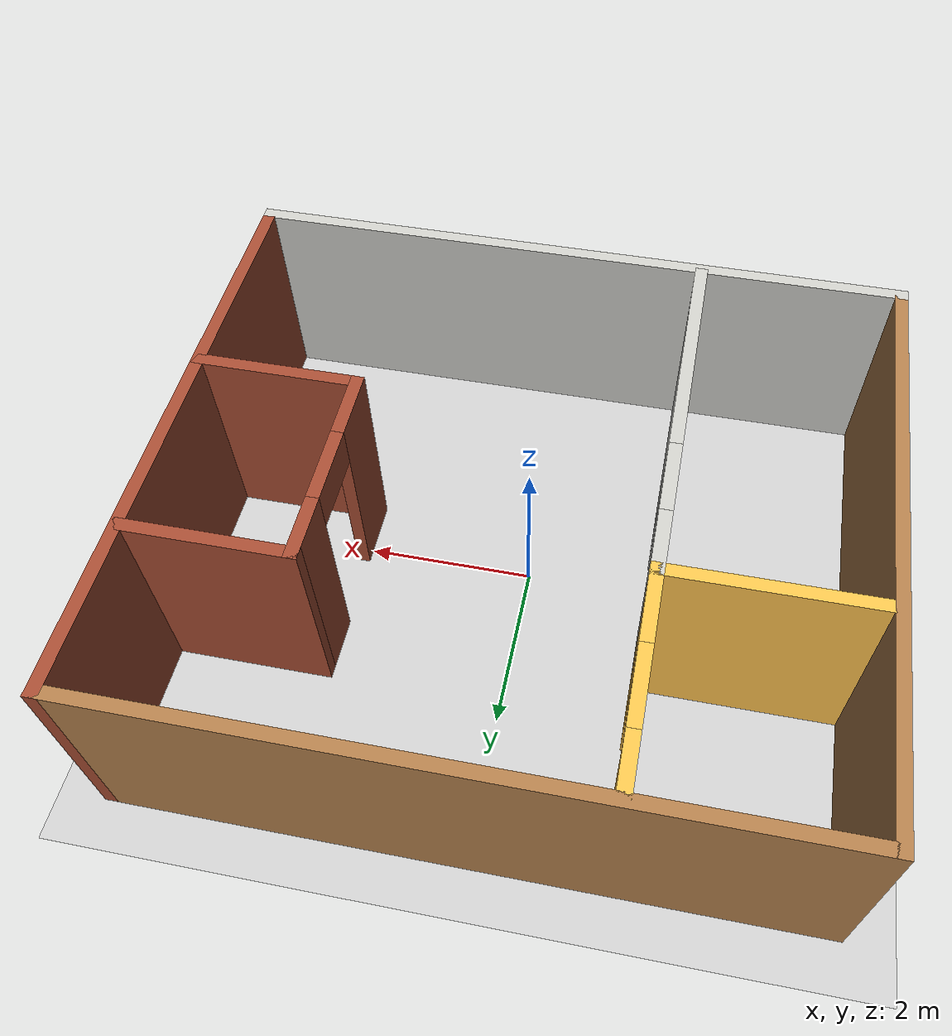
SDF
<sdf version="1.6">
 <world name="default">
  <light name="sun" type="directional">
   <pose>0 0 10 0 -0 0</pose>
   <diffuse>0.8 0.8 0.8 1</diffuse>
   <specular>0.2 0.2 0.2 1</specular>
   <attenuation>
    <range>1000</range>
    <constant>0.9</constant>
    <linear>0.01</linear>
    <quadratic>0.001</quadratic>
   </attenuation>
   <direction>-0.5 0.1 -0.9</direction>
  </light>
  <model name="ground_plane">
   <static>1</static>
   <link name="link">
    <collision name="collision">
     <geometry><plane><normal>0 0 1</normal><size>100 100</size></plane></geometry>
     <surface><friction><ode><mu>100</mu><mu2>50</mu2></ode></friction></surface>
    </collision>
    <visual name="visual">
     <cast_shadows>0</cast_shadows>
     <geometry><plane><normal>0 0 1</normal><size>100 100</size></plane></geometry>
     <material>
      <script><uri>file://media/materials/scripts/gazebo.material</uri><name>Gazebo/Grey</name></script>
     </material>
    </visual>
   </link>
  </model>
  <gravity>0 0 -9.8</gravity>
  <magnetic_field>6e-06 2.3e-05 -4.2e-05</magnetic_field>
  <atmosphere type="adiabatic"/>
  <physics name="default_physics" default="0" type="ode">
   <max_step_size>0.001</max_step_size>
   <real_time_factor>1</real_time_factor>
   <real_time_update_rate>1000</real_time_update_rate>
  </physics>
  <scene><ambient>0.4 0.4 0.4 1</ambient><background>0.7 0.7 0.7 1</background><shadows>1</shadows></scene>
  <spherical_coordinates>
   <surface_model>EARTH_WGS84</surface_model>
   <latitude_deg>0</latitude_deg>
   <longitude_deg>0</longitude_deg>
   <elevation>0</elevation>
   <heading_deg>0</heading_deg>
  </spherical_coordinates>
  <model name="project5world">
   <pose>0.02386 0.248248 0 0 -0 0</pose>
   <link name="Wall_0">
    <collision name="Wall_0_Collision">
     <geometry><box><size>7 0.15 2.5</size></box></geometry>
     <pose>0 0 1.25 0 -0 0</pose>
    </collision>
    <visual name="Wall_0_Visual">
     <pose>0 0 1.25 0 -0 0</pose>
     <geometry><box><size>7 0.15 2.5</size></box></geometry>
     <material>
      <script><uri>file://media/materials/scripts/gazebo.material</uri><name>Gazebo/Wood</name></script>
      <ambient>1 1 1 1</ambient>
     </material>
     <meta><layer>0</layer></meta>
    </visual>
    <pose>-3.925 0 0 0 0 -1.5708</pose>
   </link>
   <link name="Wall_1">
    <collision name="Wall_1_Collision">
     <geometry><box><size>8 0.15 2.5</size></box></geometry>
     <pose>0 0 1.25 0 -0 0</pose>
    </collision>
    <visual name="Wall_1_Visual">
     <pose>0 0 1.25 0 -0 0</pose>
     <geometry><box><size>8 0.15 2.5</size></box></geometry>
     <material>
      <script><uri>file://media/materials/scripts/gazebo.material</uri><name>Gazebo/CeilingTiled</name></script>
      <ambient>1 1 1 1</ambient>
     </material>
     <meta><layer>0</layer></meta>
    </visual>
    <pose>0 -3.425 0 0 -0 0</pose>
   </link>
   <link name="Wall_10">
    <collision name="Wall_10_Collision">
     <geometry><box><size>2 0.15 2.5</size></box></geometry>
     <pose>0 0 1.25 0 -0 0</pose>
    </collision>
    <visual name="Wall_10_Visual">
     <pose>0 0 1.25 0 -0 0</pose>
     <geometry><box><size>2 0.15 2.5</size></box></geometry>
     <material>
      <script><uri>file://media/materials/scripts/gazebo.material</uri><name>Gazebo/Bricks</name></script>
      <ambient>1 1 1 1</ambient>
     </material>
     <meta><layer>0</layer></meta>
    </visual>
    <pose>2.99 1.505 0 0 -0 3.14159</pose>
   </link>
   <link name="Wall_11">
    <pose>2.065 0.330001 0 0 0 -1.5708</pose>
    <visual name="Wall_11_Visual_0">
     <pose>-0.8625 0 1.25 0 -0 0</pose>
     <geometry><box><size>0.775 0.15 2.5</size></box></geometry>
     <material>
      <script><uri>file://media/materials/scripts/gazebo.material</uri><name>Gazebo/Bricks</name></script>
      <ambient>1 1 1 1</ambient>
     </material>
     <meta><layer>0</layer></meta>
    </visual>
    <collision name="Wall_11_Collision_0">
     <geometry><box><size>0.775 0.15 2.5</size></box></geometry>
     <pose>-0.8625 0 1.25 0 -0 0</pose>
    </collision>
    <visual name="Wall_11_Visual_1">
     <pose>0.8375 0 1.25 0 -0 0</pose>
     <geometry><box><size>0.825 0.15 2.5</size></box></geometry>
     <material>
      <script><uri>file://media/materials/scripts/gazebo.material</uri><name>Gazebo/Bricks</name></script>
      <ambient>1 1 1 1</ambient>
     </material>
     <meta><layer>0</layer></meta>
    </visual>
    <collision name="Wall_11_Collision_1">
     <geometry><box><size>0.825 0.15 2.5</size></box></geometry>
     <pose>0.8375 0 1.25 0 -0 0</pose>
    </collision>
    <visual name="Wall_11_Visual_2">
     <pose>-0.025 0 2.25 0 -0 0</pose>
     <geometry><box><size>0.9 0.15 0.5</size></box></geometry>
     <material>
      <script><uri>file://media/materials/scripts/gazebo.material</uri><name>Gazebo/Bricks</name></script>
      <ambient>1 1 1 1</ambient>
     </material>
     <meta><layer>0</layer></meta>
    </visual>
    <collision name="Wall_11_Collision_2">
     <geometry><box><size>0.9 0.15 0.5</size></box></geometry>
     <pose>-0.025 0 2.25 0 -0 0</pose>
    </collision>
   </link>
   <link name="Wall_12">
    <collision name="Wall_12_Collision">
     <geometry><box><size>2 0.15 2.5</size></box></geometry>
     <pose>0 0 1.25 0 -0 0</pose>
    </collision>
    <visual name="Wall_12_Visual">
     <pose>0 0 1.25 0 -0 0</pose>
     <geometry><box><size>2 0.15 2.5</size></box></geometry>
     <material>
      <script><uri>file://media/materials/scripts/gazebo.material</uri><name>Gazebo/Bricks</name></script>
      <ambient>1 1 1 1</ambient>
     </material>
     <meta><layer>0</layer></meta>
    </visual>
    <pose>2.99 -0.845 0 0 -0 0</pose>
   </link>
   <link name="Wall_2">
    <collision name="Wall_2_Collision">
     <geometry><box><size>7 0.15 2.5</size></box></geometry>
     <pose>0 0 1.25 0 -0 0</pose>
    </collision>
    <visual name="Wall_2_Visual">
     <pose>0 0 1.25 0 -0 0</pose>
     <geometry><box><size>7 0.15 2.5</size></box></geometry>
     <material>
      <script><uri>file://media/materials/scripts/gazebo.material</uri><name>Gazebo/Bricks</name></script>
      <ambient>1 1 1 1</ambient>
     </material>
     <meta><layer>0</layer></meta>
    </visual>
    <pose>3.925 0 0 0 -0 1.5708</pose>
   </link>
   <link name="Wall_3">
    <collision name="Wall_3_Collision">
     <geometry><box><size>8 0.15 2.5</size></box></geometry>
     <pose>0 0 1.25 0 -0 0</pose>
    </collision>
    <visual name="Wall_3_Visual">
     <pose>0 0 1.25 0 -0 0</pose>
     <geometry><box><size>8 0.15 2.5</size></box></geometry>
     <material>
      <script><uri>file://media/materials/scripts/gazebo.material</uri><name>Gazebo/Wood</name></script>
      <ambient>1 1 1 1</ambient>
     </material>
     <meta><layer>0</layer></meta>
    </visual>
    <pose>0 3.425 0 0 -0 3.14159</pose>
   </link>
   <link name="Wall_5">
    <pose>-1.545 2.17 0 0 0 -1.5708</pose>
    <visual name="Wall_5_Visual_0">
     <pose>-0.9125 0 1.25 0 -0 0</pose>
     <geometry><box><size>0.675 0.15 2.5</size></box></geometry>
     <material>
      <script><uri>file://media/materials/scripts/gazebo.material</uri><name>Gazebo/Grey</name></script>
      <ambient>1 0.764706 0.305882 1</ambient>
     </material>
     <meta><layer>0</layer></meta>
    </visual>
    <collision name="Wall_5_Collision_0">
     <geometry><box><size>0.675 0.15 2.5</size></box></geometry>
     <pose>-0.9125 0 1.25 0 -0 0</pose>
    </collision>
    <visual name="Wall_5_Visual_1">
     <pose>0.7875 0 1.25 0 -0 0</pose>
     <geometry><box><size>0.925 0.15 2.5</size></box></geometry>
     <material>
      <script><uri>file://media/materials/scripts/gazebo.material</uri><name>Gazebo/Grey</name></script>
      <ambient>1 0.764706 0.305882 1</ambient>
     </material>
     <meta><layer>0</layer></meta>
    </visual>
    <collision name="Wall_5_Collision_1">
     <geometry><box><size>0.925 0.15 2.5</size></box></geometry>
     <pose>0.7875 0 1.25 0 -0 0</pose>
    </collision>
    <visual name="Wall_5_Visual_2">
     <pose>-0.125 0 2.25 0 -0 0</pose>
     <geometry><box><size>0.9 0.15 0.5</size></box></geometry>
     <material>
      <script><uri>file://media/materials/scripts/gazebo.material</uri><name>Gazebo/Grey</name></script>
      <ambient>1 0.764706 0.305882 1</ambient>
     </material>
     <meta><layer>0</layer></meta>
    </visual>
    <collision name="Wall_5_Collision_2">
     <geometry><box><size>0.9 0.15 0.5</size></box></geometry>
     <pose>-0.125 0 2.25 0 -0 0</pose>
    </collision>
   </link>
   <link name="Wall_6">
    <collision name="Wall_6_Collision">
     <geometry><box><size>2.5 0.15 2.5</size></box></geometry>
     <pose>0 0 1.25 0 -0 0</pose>
    </collision>
    <visual name="Wall_6_Visual">
     <pose>0 0 1.25 0 -0 0</pose>
     <geometry><box><size>2.5 0.15 2.5</size></box></geometry>
     <material>
      <script><uri>file://media/materials/scripts/gazebo.material</uri><name>Gazebo/Grey</name></script>
      <ambient>1 0.764706 0.305882 1</ambient>
     </material>
     <meta><layer>0</layer></meta>
    </visual>
    <pose>-2.72 0.995001 0 0 -0 3.14159</pose>
   </link>
   <link name="Wall_8">
    <pose>-1.545 -1.18 0 0 0 -1.5708</pose>
    <visual name="Wall_8_Visual_0">
     <pose>-1.8475 0 1.25 0 -0 0</pose>
     <geometry><box><size>0.805 0.15 2.5</size></box></geometry>
     <material>
      <script><uri>file://media/materials/scripts/gazebo.material</uri><name>Gazebo/CeilingTiled</name></script>
      <ambient>1 1 1 1</ambient>
     </material>
     <meta><layer>0</layer></meta>
    </visual>
    <collision name="Wall_8_Collision_0">
     <geometry><box><size>0.805 0.15 2.5</size></box></geometry>
     <pose>-1.8475 0 1.25 0 -0 0</pose>
    </collision>
    <visual name="Wall_8_Visual_1">
     <pose>0.8525 0 1.25 0 -0 0</pose>
     <geometry><box><size>2.795 0.15 2.5</size></box></geometry>
     <material>
      <script><uri>file://media/materials/scripts/gazebo.material</uri><name>Gazebo/CeilingTiled</name></script>
      <ambient>1 1 1 1</ambient>
     </material>
     <meta><layer>0</layer></meta>
    </visual>
    <collision name="Wall_8_Collision_1">
     <geometry><box><size>2.795 0.15 2.5</size></box></geometry>
     <pose>0.8525 0 1.25 0 -0 0</pose>
    </collision>
    <visual name="Wall_8_Visual_2">
     <pose>-0.995 0 2.25 0 -0 0</pose>
     <geometry><box><size>0.9 0.15 0.5</size></box></geometry>
     <material>
      <script><uri>file://media/materials/scripts/gazebo.material</uri><name>Gazebo/CeilingTiled</name></script>
      <ambient>1 1 1 1</ambient>
     </material>
     <meta><layer>0</layer></meta>
    </visual>
    <collision name="Wall_8_Collision_2">
     <geometry><box><size>0.9 0.15 0.5</size></box></geometry>
     <pose>-0.995 0 2.25 0 -0 0</pose>
    </collision>
   </link>
   <static>1</static>
  </model>
 </world>
</sdf>
